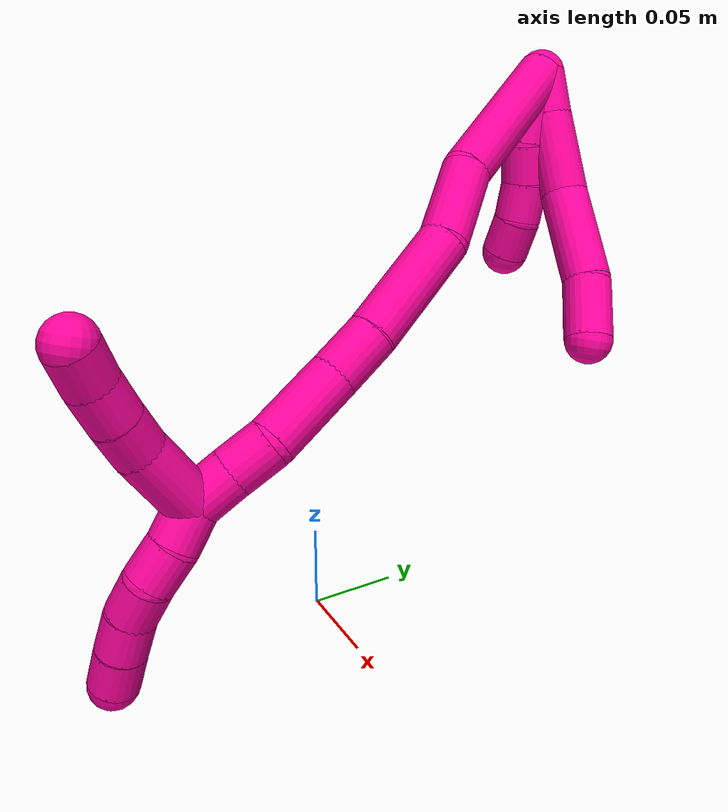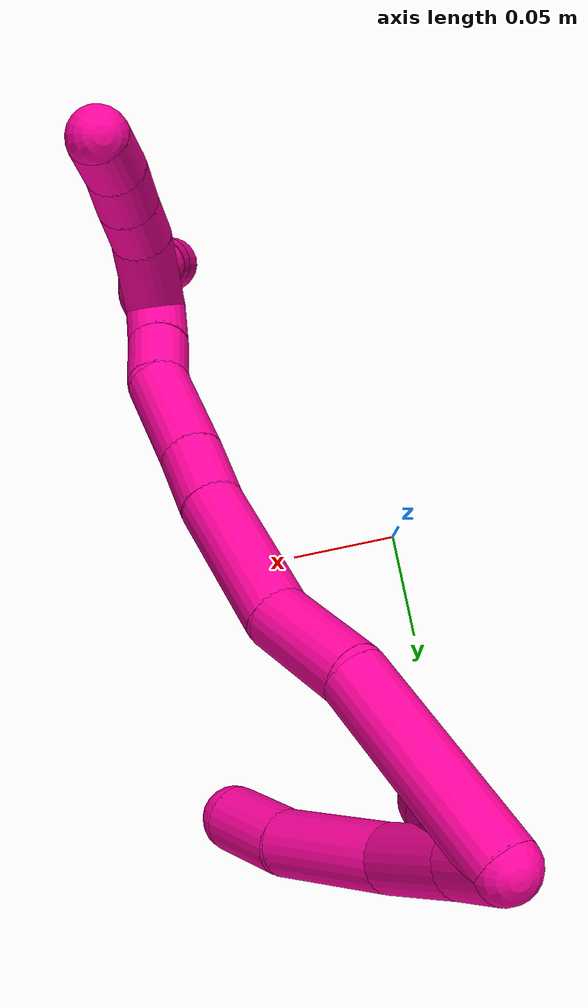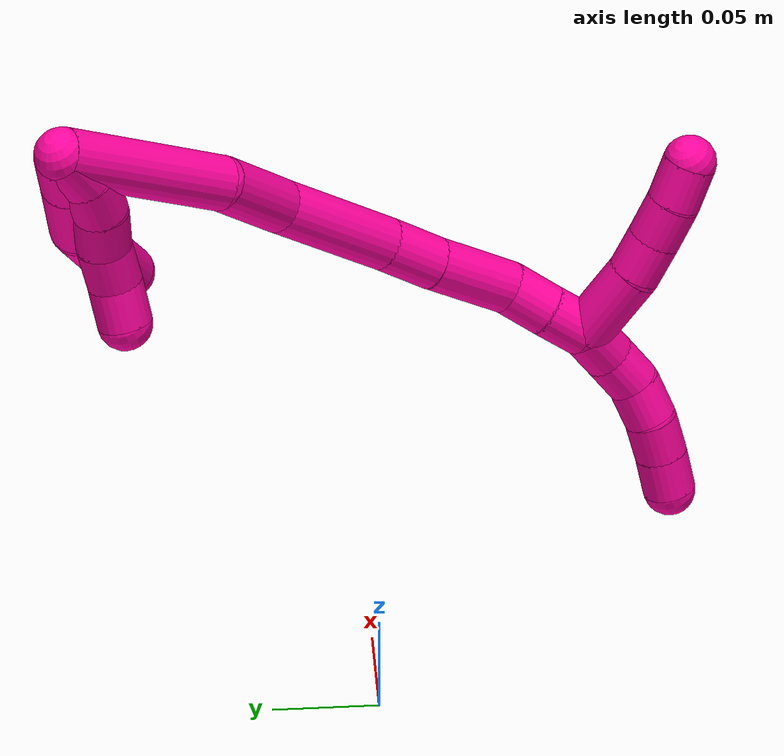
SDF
<sdf version="1.7">
 <world name="default">
  <model name="18">
   <static>0</static>
   <link name="18">
    <collision name="collision-cylinder-e_1_2_8">
     <pose>0.002205 0.003198 -0.011352 -2.867 0.184831 -1.18171</pose>
     <geometry><cylinder><radius>0.0125</radius><length>0.023997</length></cylinder></geometry>
     <surface>
      <friction><ode><mu>1.16</mu><mu2>1.16</mu2><slip1>0</slip1><slip2>0</slip2></ode></friction>
      <contact><ode><kp>1e+06</kp><kd>1</kd><max_vel>0</max_vel><min_depth>0.001</min_depth></ode></contact>
     </surface>
    </collision>
    <visual name="visual-cylinder-e_1_2_8">
     <pose>0.002205 0.003198 -0.011352 -2.867 0.184831 -1.18171</pose>
     <geometry><cylinder><radius>0.0125</radius><length>0.023997</length></cylinder></geometry>
     <material><ambient>1 0.007843 0.615686 1</ambient></material>
    </visual>
    <collision name="collision-cylinder-e_2_8_9">
     <pose>0.009076 0.012534 -0.042705 -2.84384 0.219418 -1.2669</pose>
     <geometry><cylinder><radius>0.0125</radius><length>0.04287</length></cylinder></geometry>
     <surface>
      <friction><ode><mu>1.16</mu><mu2>1.16</mu2><slip1>0</slip1><slip2>0</slip2></ode></friction>
      <contact><ode><kp>1e+06</kp><kd>1</kd><max_vel>0</max_vel><min_depth>0.001</min_depth></ode></contact>
     </surface>
    </collision>
    <visual name="visual-cylinder-e_2_8_9">
     <pose>0.009076 0.012534 -0.042705 -2.84384 0.219418 -1.2669</pose>
     <geometry><cylinder><radius>0.0125</radius><length>0.04287</length></cylinder></geometry>
     <material><ambient>1 0.007843 0.615686 1</ambient></material>
    </visual>
    <collision name="collision-cylinder-e_3_9_10">
     <pose>0.025984 0.022939 -0.084846 -2.9512 0.497408 -2.42232</pose>
     <geometry><cylinder><radius>0.0125</radius><length>0.051314</length></cylinder></geometry>
     <surface>
      <friction><ode><mu>1.16</mu><mu2>1.16</mu2><slip1>0</slip1><slip2>0</slip2></ode></friction>
      <contact><ode><kp>1e+06</kp><kd>1</kd><max_vel>0</max_vel><min_depth>0.001</min_depth></ode></contact>
     </surface>
    </collision>
    <visual name="visual-cylinder-e_3_9_10">
     <pose>0.025984 0.022939 -0.084846 -2.9512 0.497408 -2.42232</pose>
     <geometry><cylinder><radius>0.0125</radius><length>0.051314</length></cylinder></geometry>
     <material><ambient>1 0.007843 0.615686 1</ambient></material>
    </visual>
    <collision name="collision-cylinder-e_4_10_6">
     <pose>0.044081 0.027241 -0.121779 -3.13918 0.376917 -3.12895</pose>
     <geometry><cylinder><radius>0.0125</radius><length>0.031819</length></cylinder></geometry>
     <surface>
      <friction><ode><mu>1.16</mu><mu2>1.16</mu2><slip1>0</slip1><slip2>0</slip2></ode></friction>
      <contact><ode><kp>1e+06</kp><kd>1</kd><max_vel>0</max_vel><min_depth>0.001</min_depth></ode></contact>
     </surface>
    </collision>
    <visual name="visual-cylinder-e_4_10_6">
     <pose>0.044081 0.027241 -0.121779 -3.13918 0.376917 -3.12895</pose>
     <geometry><cylinder><radius>0.0125</radius><length>0.031819</length></cylinder></geometry>
     <material><ambient>1 0.007843 0.615686 1</ambient></material>
    </visual>
    <collision name="collision-cylinder-e_1_2_11">
     <pose>0.000991 -0.001955 -0.009757 2.94385 0.099259 0.928463</pose>
     <geometry><cylinder><radius>0.0125</radius><length>0.02</length></cylinder></geometry>
     <surface>
      <friction><ode><mu>1.16</mu><mu2>1.16</mu2><slip1>0</slip1><slip2>0</slip2></ode></friction>
      <contact><ode><kp>1e+06</kp><kd>1</kd><max_vel>0</max_vel><min_depth>0.001</min_depth></ode></contact>
     </surface>
    </collision>
    <visual name="visual-cylinder-e_1_2_11">
     <pose>0.000991 -0.001955 -0.009757 2.94385 0.099259 0.928463</pose>
     <geometry><cylinder><radius>0.0125</radius><length>0.02</length></cylinder></geometry>
     <material><ambient>1 0.007843 0.615686 1</ambient></material>
    </visual>
    <collision name="collision-cylinder-e_2_11_12">
     <pose>0.001563 -0.003474 -0.029495 -3.09798 -0.04195 1.53186</pose>
     <geometry><cylinder><radius>0.0125</radius><length>0.02</length></cylinder></geometry>
     <surface>
      <friction><ode><mu>1.16</mu><mu2>1.16</mu2><slip1>0</slip1><slip2>0</slip2></ode></friction>
      <contact><ode><kp>1e+06</kp><kd>1</kd><max_vel>0</max_vel><min_depth>0.001</min_depth></ode></contact>
     </surface>
    </collision>
    <visual name="visual-cylinder-e_2_11_12">
     <pose>0.001563 -0.003474 -0.029495 -3.09798 -0.04195 1.53186</pose>
     <geometry><cylinder><radius>0.0125</radius><length>0.02</length></cylinder></geometry>
     <material><ambient>1 0.007843 0.615686 1</ambient></material>
    </visual>
    <collision name="collision-cylinder-e_3_12_13">
     <pose>-0.000298 -0.000532 -0.04905 -2.88551 -0.144611 1.02493</pose>
     <geometry><cylinder><radius>0.0125</radius><length>0.02</length></cylinder></geometry>
     <surface>
      <friction><ode><mu>1.16</mu><mu2>1.16</mu2><slip1>0</slip1><slip2>0</slip2></ode></friction>
      <contact><ode><kp>1e+06</kp><kd>1</kd><max_vel>0</max_vel><min_depth>0.001</min_depth></ode></contact>
     </surface>
    </collision>
    <visual name="visual-cylinder-e_3_12_13">
     <pose>-0.000298 -0.000532 -0.04905 -2.88551 -0.144611 1.02493</pose>
     <geometry><cylinder><radius>0.0125</radius><length>0.02</length></cylinder></geometry>
     <material><ambient>1 0.007843 0.615686 1</ambient></material>
    </visual>
    <collision name="collision-cylinder-e_4_13_14">
     <pose>-0.003966 0.002548 -0.068355 -3.08274 -0.2246 2.63094</pose>
     <geometry><cylinder><radius>0.0125</radius><length>0.02</length></cylinder></geometry>
     <surface>
      <friction><ode><mu>1.16</mu><mu2>1.16</mu2><slip1>0</slip1><slip2>0</slip2></ode></friction>
      <contact><ode><kp>1e+06</kp><kd>1</kd><max_vel>0</max_vel><min_depth>0.001</min_depth></ode></contact>
     </surface>
    </collision>
    <visual name="visual-cylinder-e_4_13_14">
     <pose>-0.003966 0.002548 -0.068355 -3.08274 -0.2246 2.63094</pose>
     <geometry><cylinder><radius>0.0125</radius><length>0.02</length></cylinder></geometry>
     <material><ambient>1 0.007843 0.615686 1</ambient></material>
    </visual>
    <collision name="collision-cylinder-e_5_14_5">
     <pose>-0.01069 0.003141 -0.087019 -3.13944 -0.466363 3.13252</pose>
     <geometry><cylinder><radius>0.0125</radius><length>0.02</length></cylinder></geometry>
     <surface>
      <friction><ode><mu>1.16</mu><mu2>1.16</mu2><slip1>0</slip1><slip2>0</slip2></ode></friction>
      <contact><ode><kp>1e+06</kp><kd>1</kd><max_vel>0</max_vel><min_depth>0.001</min_depth></ode></contact>
     </surface>
    </collision>
    <visual name="visual-cylinder-e_5_14_5">
     <pose>-0.01069 0.003141 -0.087019 -3.13944 -0.466363 3.13252</pose>
     <geometry><cylinder><radius>0.0125</radius><length>0.02</length></cylinder></geometry>
     <material><ambient>1 0.007843 0.615686 1</ambient></material>
    </visual>
    <collision name="collision-cylinder-e_1_2_15">
     <pose>0.015909 -0.023091 -0.031632 2.51102 0.385868 1.07933</pose>
     <geometry><cylinder><radius>0.0125</radius><length>0.084543</length></cylinder></geometry>
     <surface>
      <friction><ode><mu>1.16</mu><mu2>1.16</mu2><slip1>0</slip1><slip2>0</slip2></ode></friction>
      <contact><ode><kp>1e+06</kp><kd>1</kd><max_vel>0</max_vel><min_depth>0.001</min_depth></ode></contact>
     </surface>
    </collision>
    <visual name="visual-cylinder-e_1_2_15">
     <pose>0.015909 -0.023091 -0.031632 2.51102 0.385868 1.07933</pose>
     <geometry><cylinder><radius>0.0125</radius><length>0.084543</length></cylinder></geometry>
     <material><ambient>1 0.007843 0.615686 1</ambient></material>
    </visual>
    <collision name="collision-cylinder-e_2_15_16">
     <pose>0.040174 -0.052389 -0.081997 2.82164 0.400473 1.79819</pose>
     <geometry><cylinder><radius>0.0125</radius><length>0.04286</length></cylinder></geometry>
     <surface>
      <friction><ode><mu>1.16</mu><mu2>1.16</mu2><slip1>0</slip1><slip2>0</slip2></ode></friction>
      <contact><ode><kp>1e+06</kp><kd>1</kd><max_vel>0</max_vel><min_depth>0.001</min_depth></ode></contact>
     </surface>
    </collision>
    <visual name="visual-cylinder-e_2_15_16">
     <pose>0.040174 -0.052389 -0.081997 2.82164 0.400473 1.79819</pose>
     <geometry><cylinder><radius>0.0125</radius><length>0.04286</length></cylinder></geometry>
     <material><ambient>1 0.007843 0.615686 1</ambient></material>
    </visual>
    <collision name="collision-cylinder-e_3_16_17">
     <pose>0.05556 -0.075061 -0.125159 2.54854 0.234306 0.73537</pose>
     <geometry><cylinder><radius>0.0125</radius><length>0.060576</length></cylinder></geometry>
     <surface>
      <friction><ode><mu>1.16</mu><mu2>1.16</mu2><slip1>0</slip1><slip2>0</slip2></ode></friction>
      <contact><ode><kp>1e+06</kp><kd>1</kd><max_vel>0</max_vel><min_depth>0.001</min_depth></ode></contact>
     </surface>
    </collision>
    <visual name="visual-cylinder-e_3_16_17">
     <pose>0.05556 -0.075061 -0.125159 2.54854 0.234306 0.73537</pose>
     <geometry><cylinder><radius>0.0125</radius><length>0.060576</length></cylinder></geometry>
     <material><ambient>1 0.007843 0.615686 1</ambient></material>
    </visual>
    <collision name="collision-cylinder-e_4_17_18">
     <pose>0.064539 -0.099726 -0.16022 2.48458 0.144029 0.417126</pose>
     <geometry><cylinder><radius>0.0125</radius><length>0.027132</length></cylinder></geometry>
     <surface>
      <friction><ode><mu>1.16</mu><mu2>1.16</mu2><slip1>0</slip1><slip2>0</slip2></ode></friction>
      <contact><ode><kp>1e+06</kp><kd>1</kd><max_vel>0</max_vel><min_depth>0.001</min_depth></ode></contact>
     </surface>
    </collision>
    <visual name="visual-cylinder-e_4_17_18">
     <pose>0.064539 -0.099726 -0.16022 2.48458 0.144029 0.417126</pose>
     <geometry><cylinder><radius>0.0125</radius><length>0.027132</length></cylinder></geometry>
     <material><ambient>1 0.007843 0.615686 1</ambient></material>
    </visual>
    <collision name="collision-cylinder-e_5_18_19">
     <pose>0.070502 -0.120803 -0.186629 2.45707 0.194671 0.534994</pose>
     <geometry><cylinder><radius>0.0125</radius><length>0.041519</length></cylinder></geometry>
     <surface>
      <friction><ode><mu>1.16</mu><mu2>1.16</mu2><slip1>0</slip1><slip2>0</slip2></ode></friction>
      <contact><ode><kp>1e+06</kp><kd>1</kd><max_vel>0</max_vel><min_depth>0.001</min_depth></ode></contact>
     </surface>
    </collision>
    <visual name="visual-cylinder-e_5_18_19">
     <pose>0.070502 -0.120803 -0.186629 2.45707 0.194671 0.534994</pose>
     <geometry><cylinder><radius>0.0125</radius><length>0.041519</length></cylinder></geometry>
     <material><ambient>1 0.007843 0.615686 1</ambient></material>
    </visual>
    <collision name="collision-cylinder-e_6_19_20">
     <pose>0.073212 -0.141081 -0.210325 2.38996 -0.119883 -0.301882</pose>
     <geometry><cylinder><radius>0.0125</radius><length>0.02183</length></cylinder></geometry>
     <surface>
      <friction><ode><mu>1.16</mu><mu2>1.16</mu2><slip1>0</slip1><slip2>0</slip2></ode></friction>
      <contact><ode><kp>1e+06</kp><kd>1</kd><max_vel>0</max_vel><min_depth>0.001</min_depth></ode></contact>
     </surface>
    </collision>
    <visual name="visual-cylinder-e_6_19_20">
     <pose>0.073212 -0.141081 -0.210325 2.38996 -0.119883 -0.301882</pose>
     <geometry><cylinder><radius>0.0125</radius><length>0.02183</length></cylinder></geometry>
     <material><ambient>1 0.007843 0.615686 1</ambient></material>
    </visual>
    <collision name="collision-cylinder-e_7_20_1">
     <pose>0.071139 -0.155685 -0.226211 2.40657 -0.071361 -0.184901</pose>
     <geometry><cylinder><radius>0.0125</radius><length>0.021541</length></cylinder></geometry>
     <surface>
      <friction><ode><mu>1.16</mu><mu2>1.16</mu2><slip1>0</slip1><slip2>0</slip2></ode></friction>
      <contact><ode><kp>1e+06</kp><kd>1</kd><max_vel>0</max_vel><min_depth>0.001</min_depth></ode></contact>
     </surface>
    </collision>
    <visual name="visual-cylinder-e_7_20_1">
     <pose>0.071139 -0.155685 -0.226211 2.40657 -0.071361 -0.184901</pose>
     <geometry><cylinder><radius>0.0125</radius><length>0.021541</length></cylinder></geometry>
     <material><ambient>1 0.007843 0.615686 1</ambient></material>
    </visual>
    <collision name="collision-cylinder-e_1_1_21">
     <pose>0.076572 -0.17698 -0.222438 0.876066 0.326024 0.153767</pose>
     <geometry><cylinder><radius>0.0125</radius><length>0.038724</length></cylinder></geometry>
     <surface>
      <friction><ode><mu>1.16</mu><mu2>1.16</mu2><slip1>0</slip1><slip2>0</slip2></ode></friction>
      <contact><ode><kp>1e+06</kp><kd>1</kd><max_vel>0</max_vel><min_depth>0.001</min_depth></ode></contact>
     </surface>
    </collision>
    <visual name="visual-cylinder-e_1_1_21">
     <pose>0.076572 -0.17698 -0.222438 0.876066 0.326024 0.153767</pose>
     <geometry><cylinder><radius>0.0125</radius><length>0.038724</length></cylinder></geometry>
     <material><ambient>1 0.007843 0.615686 1</ambient></material>
    </visual>
    <collision name="collision-cylinder-e_2_21_22">
     <pose>0.087142 -0.197162 -0.204077 0.743876 0.452089 0.178945</pose>
     <geometry><cylinder><radius>0.0125</radius><length>0.020001</length></cylinder></geometry>
     <surface>
      <friction><ode><mu>1.16</mu><mu2>1.16</mu2><slip1>0</slip1><slip2>0</slip2></ode></friction>
      <contact><ode><kp>1e+06</kp><kd>1</kd><max_vel>0</max_vel><min_depth>0.001</min_depth></ode></contact>
     </surface>
    </collision>
    <visual name="visual-cylinder-e_2_21_22">
     <pose>0.087142 -0.197162 -0.204077 0.743876 0.452089 0.178945</pose>
     <geometry><cylinder><radius>0.0125</radius><length>0.020001</length></cylinder></geometry>
     <material><ambient>1 0.007843 0.615686 1</ambient></material>
    </visual>
    <collision name="collision-cylinder-e_3_22_23">
     <pose>0.095589 -0.20932 -0.190309 0.703722 0.410319 0.152498</pose>
     <geometry><cylinder><radius>0.0125</radius><length>0.020448</length></cylinder></geometry>
     <surface>
      <friction><ode><mu>1.16</mu><mu2>1.16</mu2><slip1>0</slip1><slip2>0</slip2></ode></friction>
      <contact><ode><kp>1e+06</kp><kd>1</kd><max_vel>0</max_vel><min_depth>0.001</min_depth></ode></contact>
     </surface>
    </collision>
    <visual name="visual-cylinder-e_3_22_23">
     <pose>0.095589 -0.20932 -0.190309 0.703722 0.410319 0.152498</pose>
     <geometry><cylinder><radius>0.0125</radius><length>0.020448</length></cylinder></geometry>
     <material><ambient>1 0.007843 0.615686 1</ambient></material>
    </visual>
    <collision name="collision-cylinder-e_4_23_4">
     <pose>0.104632 -0.220641 -0.175665 0.611428 0.496968 0.159816</pose>
     <geometry><cylinder><radius>0.0125</radius><length>0.020827</length></cylinder></geometry>
     <surface>
      <friction><ode><mu>1.16</mu><mu2>1.16</mu2><slip1>0</slip1><slip2>0</slip2></ode></friction>
      <contact><ode><kp>1e+06</kp><kd>1</kd><max_vel>0</max_vel><min_depth>0.001</min_depth></ode></contact>
     </surface>
    </collision>
    <visual name="visual-cylinder-e_4_23_4">
     <pose>0.104632 -0.220641 -0.175665 0.611428 0.496968 0.159816</pose>
     <geometry><cylinder><radius>0.0125</radius><length>0.020827</length></cylinder></geometry>
     <material><ambient>1 0.007843 0.615686 1</ambient></material>
    </visual>
    <collision name="collision-cylinder-e_1_1_24">
     <pose>0.070346 -0.165901 -0.243716 2.83569 -0.002525 -0.016376</pose>
     <geometry><cylinder><radius>0.0125</radius><length>0.02</length></cylinder></geometry>
     <surface>
      <friction><ode><mu>1.16</mu><mu2>1.16</mu2><slip1>0</slip1><slip2>0</slip2></ode></friction>
      <contact><ode><kp>1e+06</kp><kd>1</kd><max_vel>0</max_vel><min_depth>0.001</min_depth></ode></contact>
     </surface>
    </collision>
    <visual name="visual-cylinder-e_1_1_24">
     <pose>0.070346 -0.165901 -0.243716 2.83569 -0.002525 -0.016376</pose>
     <geometry><cylinder><radius>0.0125</radius><length>0.02</length></cylinder></geometry>
     <material><ambient>1 0.007843 0.615686 1</ambient></material>
    </visual>
    <collision name="collision-cylinder-e_2_24_25">
     <pose>0.068749 -0.172854 -0.262307 2.73105 -0.157781 -0.72576</pose>
     <geometry><cylinder><radius>0.0125</radius><length>0.02</length></cylinder></geometry>
     <surface>
      <friction><ode><mu>1.16</mu><mu2>1.16</mu2><slip1>0</slip1><slip2>0</slip2></ode></friction>
      <contact><ode><kp>1e+06</kp><kd>1</kd><max_vel>0</max_vel><min_depth>0.001</min_depth></ode></contact>
     </surface>
    </collision>
    <visual name="visual-cylinder-e_2_24_25">
     <pose>0.068749 -0.172854 -0.262307 2.73105 -0.157781 -0.72576</pose>
     <geometry><cylinder><radius>0.0125</radius><length>0.02</length></cylinder></geometry>
     <material><ambient>1 0.007843 0.615686 1</ambient></material>
    </visual>
    <collision name="collision-cylinder-e_3_25_26">
     <pose>0.063152 -0.17902 -0.280241 2.89614 -0.414391 -2.08033</pose>
     <geometry><cylinder><radius>0.0125</radius><length>0.02</length></cylinder></geometry>
     <surface>
      <friction><ode><mu>1.16</mu><mu2>1.16</mu2><slip1>0</slip1><slip2>0</slip2></ode></friction>
      <contact><ode><kp>1e+06</kp><kd>1</kd><max_vel>0</max_vel><min_depth>0.001</min_depth></ode></contact>
     </surface>
    </collision>
    <visual name="visual-cylinder-e_3_25_26">
     <pose>0.063152 -0.17902 -0.280241 2.89614 -0.414391 -2.08033</pose>
     <geometry><cylinder><radius>0.0125</radius><length>0.02</length></cylinder></geometry>
     <material><ambient>1 0.007843 0.615686 1</ambient></material>
    </visual>
    <collision name="collision-cylinder-e_4_26_27">
     <pose>0.055739 -0.18174 -0.298517 3.08884 -0.345483 -2.84143</pose>
     <geometry><cylinder><radius>0.0125</radius><length>0.02</length></cylinder></geometry>
     <surface>
      <friction><ode><mu>1.16</mu><mu2>1.16</mu2><slip1>0</slip1><slip2>0</slip2></ode></friction>
      <contact><ode><kp>1e+06</kp><kd>1</kd><max_vel>0</max_vel><min_depth>0.001</min_depth></ode></contact>
     </surface>
    </collision>
    <visual name="visual-cylinder-e_4_26_27">
     <pose>0.055739 -0.18174 -0.298517 3.08884 -0.345483 -2.84143</pose>
     <geometry><cylinder><radius>0.0125</radius><length>0.02</length></cylinder></geometry>
     <material><ambient>1 0.007843 0.615686 1</ambient></material>
    </visual>
    <collision name="collision-cylinder-e_5_27_3">
     <pose>0.048525 -0.182303 -0.317151 3.13435 -0.392798 -3.10517</pose>
     <geometry><cylinder><radius>0.0125</radius><length>0.02</length></cylinder></geometry>
     <surface>
      <friction><ode><mu>1.16</mu><mu2>1.16</mu2><slip1>0</slip1><slip2>0</slip2></ode></friction>
      <contact><ode><kp>1e+06</kp><kd>1</kd><max_vel>0</max_vel><min_depth>0.001</min_depth></ode></contact>
     </surface>
    </collision>
    <visual name="visual-cylinder-e_5_27_3">
     <pose>0.048525 -0.182303 -0.317151 3.13435 -0.392798 -3.10517</pose>
     <geometry><cylinder><radius>0.0125</radius><length>0.02</length></cylinder></geometry>
     <material><ambient>1 0.007843 0.615686 1</ambient></material>
    </visual>
    <collision name="collision-sphere-3">
     <pose>0.044697 -0.18237 -0.326389 0 -0 0</pose>
     <geometry><sphere><radius>0.0125</radius></sphere></geometry>
     <surface>
      <friction><ode><mu>1.16</mu><mu2>1.16</mu2><slip1>0</slip1><slip2>0</slip2></ode></friction>
      <contact><ode><kp>1e+06</kp><kd>1</kd><max_vel>0</max_vel><min_depth>0.001</min_depth></ode></contact>
     </surface>
    </collision>
    <visual name="visual-sphere-3">
     <pose>0.044697 -0.18237 -0.326389 0 -0 0</pose>
     <geometry><sphere><radius>0.0125</radius></sphere></geometry>
     <material><ambient>1 0.007843 0.615686 1</ambient></material>
    </visual>
    <collision name="collision-sphere-27">
     <pose>0.052352 -0.182236 -0.307913 0 -0 0</pose>
     <geometry><sphere><radius>0.0125</radius></sphere></geometry>
     <surface>
      <friction><ode><mu>1.16</mu><mu2>1.16</mu2><slip1>0</slip1><slip2>0</slip2></ode></friction>
      <contact><ode><kp>1e+06</kp><kd>1</kd><max_vel>0</max_vel><min_depth>0.001</min_depth></ode></contact>
     </surface>
    </collision>
    <visual name="visual-sphere-27">
     <pose>0.052352 -0.182236 -0.307913 0 -0 0</pose>
     <geometry><sphere><radius>0.0125</radius></sphere></geometry>
     <material><ambient>1 0.007843 0.615686 1</ambient></material>
    </visual>
    <collision name="collision-sphere-26">
     <pose>0.059125 -0.181244 -0.289121 0 -0 0</pose>
     <geometry><sphere><radius>0.0125</radius></sphere></geometry>
     <surface>
      <friction><ode><mu>1.16</mu><mu2>1.16</mu2><slip1>0</slip1><slip2>0</slip2></ode></friction>
      <contact><ode><kp>1e+06</kp><kd>1</kd><max_vel>0</max_vel><min_depth>0.001</min_depth></ode></contact>
     </surface>
    </collision>
    <visual name="visual-sphere-26">
     <pose>0.059125 -0.181244 -0.289121 0 -0 0</pose>
     <geometry><sphere><radius>0.0125</radius></sphere></geometry>
     <material><ambient>1 0.007843 0.615686 1</ambient></material>
    </visual>
    <collision name="collision-sphere-25">
     <pose>0.067178 -0.176795 -0.271362 0 -0 0</pose>
     <geometry><sphere><radius>0.0125</radius></sphere></geometry>
     <surface>
      <friction><ode><mu>1.16</mu><mu2>1.16</mu2><slip1>0</slip1><slip2>0</slip2></ode></friction>
      <contact><ode><kp>1e+06</kp><kd>1</kd><max_vel>0</max_vel><min_depth>0.001</min_depth></ode></contact>
     </surface>
    </collision>
    <visual name="visual-sphere-25">
     <pose>0.067178 -0.176795 -0.271362 0 -0 0</pose>
     <geometry><sphere><radius>0.0125</radius></sphere></geometry>
     <material><ambient>1 0.007843 0.615686 1</ambient></material>
    </visual>
    <collision name="collision-sphere-24">
     <pose>0.070321 -0.168912 -0.253252 0 -0 0</pose>
     <geometry><sphere><radius>0.0125</radius></sphere></geometry>
     <surface>
      <friction><ode><mu>1.16</mu><mu2>1.16</mu2><slip1>0</slip1><slip2>0</slip2></ode></friction>
      <contact><ode><kp>1e+06</kp><kd>1</kd><max_vel>0</max_vel><min_depth>0.001</min_depth></ode></contact>
     </surface>
    </collision>
    <visual name="visual-sphere-24">
     <pose>0.070321 -0.168912 -0.253252 0 -0 0</pose>
     <geometry><sphere><radius>0.0125</radius></sphere></geometry>
     <material><ambient>1 0.007843 0.615686 1</ambient></material>
    </visual>
    <collision name="collision-sphere-4">
     <pose>0.109597 -0.225896 -0.16817 0 -0 0</pose>
     <geometry><sphere><radius>0.0125</radius></sphere></geometry>
     <surface>
      <friction><ode><mu>1.16</mu><mu2>1.16</mu2><slip1>0</slip1><slip2>0</slip2></ode></friction>
      <contact><ode><kp>1e+06</kp><kd>1</kd><max_vel>0</max_vel><min_depth>0.001</min_depth></ode></contact>
     </surface>
    </collision>
    <visual name="visual-sphere-4">
     <pose>0.109597 -0.225896 -0.16817 0 -0 0</pose>
     <geometry><sphere><radius>0.0125</radius></sphere></geometry>
     <material><ambient>1 0.007843 0.615686 1</ambient></material>
    </visual>
    <collision name="collision-sphere-23">
     <pose>0.099667 -0.215387 -0.183161 0 -0 0</pose>
     <geometry><sphere><radius>0.0125</radius></sphere></geometry>
     <surface>
      <friction><ode><mu>1.16</mu><mu2>1.16</mu2><slip1>0</slip1><slip2>0</slip2></ode></friction>
      <contact><ode><kp>1e+06</kp><kd>1</kd><max_vel>0</max_vel><min_depth>0.001</min_depth></ode></contact>
     </surface>
    </collision>
    <visual name="visual-sphere-23">
     <pose>0.099667 -0.215387 -0.183161 0 -0 0</pose>
     <geometry><sphere><radius>0.0125</radius></sphere></geometry>
     <material><ambient>1 0.007843 0.615686 1</ambient></material>
    </visual>
    <collision name="collision-sphere-22">
     <pose>0.091511 -0.203254 -0.197457 0 -0 0</pose>
     <geometry><sphere><radius>0.0125</radius></sphere></geometry>
     <surface>
      <friction><ode><mu>1.16</mu><mu2>1.16</mu2><slip1>0</slip1><slip2>0</slip2></ode></friction>
      <contact><ode><kp>1e+06</kp><kd>1</kd><max_vel>0</max_vel><min_depth>0.001</min_depth></ode></contact>
     </surface>
    </collision>
    <visual name="visual-sphere-22">
     <pose>0.091511 -0.203254 -0.197457 0 -0 0</pose>
     <geometry><sphere><radius>0.0125</radius></sphere></geometry>
     <material><ambient>1 0.007843 0.615686 1</ambient></material>
    </visual>
    <collision name="collision-sphere-21">
     <pose>0.082773 -0.191071 -0.210696 0 -0 0</pose>
     <geometry><sphere><radius>0.0125</radius></sphere></geometry>
     <surface>
      <friction><ode><mu>1.16</mu><mu2>1.16</mu2><slip1>0</slip1><slip2>0</slip2></ode></friction>
      <contact><ode><kp>1e+06</kp><kd>1</kd><max_vel>0</max_vel><min_depth>0.001</min_depth></ode></contact>
     </surface>
    </collision>
    <visual name="visual-sphere-21">
     <pose>0.082773 -0.191071 -0.210696 0 -0 0</pose>
     <geometry><sphere><radius>0.0125</radius></sphere></geometry>
     <material><ambient>1 0.007843 0.615686 1</ambient></material>
    </visual>
    <collision name="collision-sphere-1">
     <pose>0.070371 -0.162889 -0.23418 0 -0 0</pose>
     <geometry><sphere><radius>0.0125</radius></sphere></geometry>
     <surface>
      <friction><ode><mu>1.16</mu><mu2>1.16</mu2><slip1>0</slip1><slip2>0</slip2></ode></friction>
      <contact><ode><kp>1e+06</kp><kd>1</kd><max_vel>0</max_vel><min_depth>0.001</min_depth></ode></contact>
     </surface>
    </collision>
    <visual name="visual-sphere-1">
     <pose>0.070371 -0.162889 -0.23418 0 -0 0</pose>
     <geometry><sphere><radius>0.0125</radius></sphere></geometry>
     <material><ambient>1 0.007843 0.615686 1</ambient></material>
    </visual>
    <collision name="collision-sphere-11">
     <pose>0.001982 -0.00391 -0.019514 0 -0 0</pose>
     <geometry><sphere><radius>0.0125</radius></sphere></geometry>
     <surface>
      <friction><ode><mu>1.16</mu><mu2>1.16</mu2><slip1>0</slip1><slip2>0</slip2></ode></friction>
      <contact><ode><kp>1e+06</kp><kd>1</kd><max_vel>0</max_vel><min_depth>0.001</min_depth></ode></contact>
     </surface>
    </collision>
    <visual name="visual-sphere-11">
     <pose>0.001982 -0.00391 -0.019514 0 -0 0</pose>
     <geometry><sphere><radius>0.0125</radius></sphere></geometry>
     <material><ambient>1 0.007843 0.615686 1</ambient></material>
    </visual>
    <collision name="collision-sphere-6">
     <pose>0.049937 0.027277 -0.136572 0 -0 0</pose>
     <geometry><sphere><radius>0.0125</radius></sphere></geometry>
     <surface>
      <friction><ode><mu>1.16</mu><mu2>1.16</mu2><slip1>0</slip1><slip2>0</slip2></ode></friction>
      <contact><ode><kp>1e+06</kp><kd>1</kd><max_vel>0</max_vel><min_depth>0.001</min_depth></ode></contact>
     </surface>
    </collision>
    <visual name="visual-sphere-6">
     <pose>0.049937 0.027277 -0.136572 0 -0 0</pose>
     <geometry><sphere><radius>0.0125</radius></sphere></geometry>
     <material><ambient>1 0.007843 0.615686 1</ambient></material>
    </visual>
    <collision name="collision-sphere-10">
     <pose>0.038226 0.027206 -0.106987 0 -0 0</pose>
     <geometry><sphere><radius>0.0125</radius></sphere></geometry>
     <surface>
      <friction><ode><mu>1.16</mu><mu2>1.16</mu2><slip1>0</slip1><slip2>0</slip2></ode></friction>
      <contact><ode><kp>1e+06</kp><kd>1</kd><max_vel>0</max_vel><min_depth>0.001</min_depth></ode></contact>
     </surface>
    </collision>
    <visual name="visual-sphere-10">
     <pose>0.038226 0.027206 -0.106987 0 -0 0</pose>
     <geometry><sphere><radius>0.0125</radius></sphere></geometry>
     <material><ambient>1 0.007843 0.615686 1</ambient></material>
    </visual>
    <collision name="collision-sphere-9">
     <pose>0.013741 0.018671 -0.062706 0 -0 0</pose>
     <geometry><sphere><radius>0.0125</radius></sphere></geometry>
     <surface>
      <friction><ode><mu>1.16</mu><mu2>1.16</mu2><slip1>0</slip1><slip2>0</slip2></ode></friction>
      <contact><ode><kp>1e+06</kp><kd>1</kd><max_vel>0</max_vel><min_depth>0.001</min_depth></ode></contact>
     </surface>
    </collision>
    <visual name="visual-sphere-9">
     <pose>0.013741 0.018671 -0.062706 0 -0 0</pose>
     <geometry><sphere><radius>0.0125</radius></sphere></geometry>
     <material><ambient>1 0.007843 0.615686 1</ambient></material>
    </visual>
    <collision name="collision-sphere-2">
     <geometry><sphere><radius>0.0125</radius></sphere></geometry>
     <surface>
      <friction><ode><mu>1.16</mu><mu2>1.16</mu2><slip1>0</slip1><slip2>0</slip2></ode></friction>
      <contact><ode><kp>1e+06</kp><kd>1</kd><max_vel>0</max_vel><min_depth>0.001</min_depth></ode></contact>
     </surface>
    </collision>
    <visual name="visual-sphere-2">
     <geometry><sphere><radius>0.0125</radius></sphere></geometry>
     <material><ambient>1 0.007843 0.615686 1</ambient></material>
    </visual>
    <collision name="collision-sphere-19">
     <pose>0.074518 -0.133682 -0.202408 0 -0 0</pose>
     <geometry><sphere><radius>0.0125</radius></sphere></geometry>
     <surface>
      <friction><ode><mu>1.16</mu><mu2>1.16</mu2><slip1>0</slip1><slip2>0</slip2></ode></friction>
      <contact><ode><kp>1e+06</kp><kd>1</kd><max_vel>0</max_vel><min_depth>0.001</min_depth></ode></contact>
     </surface>
    </collision>
    <visual name="visual-sphere-19">
     <pose>0.074518 -0.133682 -0.202408 0 -0 0</pose>
     <geometry><sphere><radius>0.0125</radius></sphere></geometry>
     <material><ambient>1 0.007843 0.615686 1</ambient></material>
    </visual>
    <collision name="collision-sphere-8">
     <pose>0.00441 0.006396 -0.022704 0 -0 0</pose>
     <geometry><sphere><radius>0.0125</radius></sphere></geometry>
     <surface>
      <friction><ode><mu>1.16</mu><mu2>1.16</mu2><slip1>0</slip1><slip2>0</slip2></ode></friction>
      <contact><ode><kp>1e+06</kp><kd>1</kd><max_vel>0</max_vel><min_depth>0.001</min_depth></ode></contact>
     </surface>
    </collision>
    <visual name="visual-sphere-8">
     <pose>0.00441 0.006396 -0.022704 0 -0 0</pose>
     <geometry><sphere><radius>0.0125</radius></sphere></geometry>
     <material><ambient>1 0.007843 0.615686 1</ambient></material>
    </visual>
    <collision name="collision-sphere-12">
     <pose>0.001143 -0.003039 -0.039477 0 -0 0</pose>
     <geometry><sphere><radius>0.0125</radius></sphere></geometry>
     <surface>
      <friction><ode><mu>1.16</mu><mu2>1.16</mu2><slip1>0</slip1><slip2>0</slip2></ode></friction>
      <contact><ode><kp>1e+06</kp><kd>1</kd><max_vel>0</max_vel><min_depth>0.001</min_depth></ode></contact>
     </surface>
    </collision>
    <visual name="visual-sphere-12">
     <pose>0.001143 -0.003039 -0.039477 0 -0 0</pose>
     <geometry><sphere><radius>0.0125</radius></sphere></geometry>
     <material><ambient>1 0.007843 0.615686 1</ambient></material>
    </visual>
    <collision name="collision-sphere-13">
     <pose>-0.001739 0.001974 -0.058623 0 -0 0</pose>
     <geometry><sphere><radius>0.0125</radius></sphere></geometry>
     <surface>
      <friction><ode><mu>1.16</mu><mu2>1.16</mu2><slip1>0</slip1><slip2>0</slip2></ode></friction>
      <contact><ode><kp>1e+06</kp><kd>1</kd><max_vel>0</max_vel><min_depth>0.001</min_depth></ode></contact>
     </surface>
    </collision>
    <visual name="visual-sphere-13">
     <pose>-0.001739 0.001974 -0.058623 0 -0 0</pose>
     <geometry><sphere><radius>0.0125</radius></sphere></geometry>
     <material><ambient>1 0.007843 0.615686 1</ambient></material>
    </visual>
    <collision name="collision-sphere-14">
     <pose>-0.006193 0.003121 -0.078087 0 -0 0</pose>
     <geometry><sphere><radius>0.0125</radius></sphere></geometry>
     <surface>
      <friction><ode><mu>1.16</mu><mu2>1.16</mu2><slip1>0</slip1><slip2>0</slip2></ode></friction>
      <contact><ode><kp>1e+06</kp><kd>1</kd><max_vel>0</max_vel><min_depth>0.001</min_depth></ode></contact>
     </surface>
    </collision>
    <visual name="visual-sphere-14">
     <pose>-0.006193 0.003121 -0.078087 0 -0 0</pose>
     <geometry><sphere><radius>0.0125</radius></sphere></geometry>
     <material><ambient>1 0.007843 0.615686 1</ambient></material>
    </visual>
    <collision name="collision-sphere-5">
     <pose>-0.015186 0.00316 -0.095951 0 -0 0</pose>
     <geometry><sphere><radius>0.0125</radius></sphere></geometry>
     <surface>
      <friction><ode><mu>1.16</mu><mu2>1.16</mu2><slip1>0</slip1><slip2>0</slip2></ode></friction>
      <contact><ode><kp>1e+06</kp><kd>1</kd><max_vel>0</max_vel><min_depth>0.001</min_depth></ode></contact>
     </surface>
    </collision>
    <visual name="visual-sphere-5">
     <pose>-0.015186 0.00316 -0.095951 0 -0 0</pose>
     <geometry><sphere><radius>0.0125</radius></sphere></geometry>
     <material><ambient>1 0.007843 0.615686 1</ambient></material>
    </visual>
    <collision name="collision-sphere-15">
     <pose>0.031819 -0.046182 -0.063264 0 -0 0</pose>
     <geometry><sphere><radius>0.0125</radius></sphere></geometry>
     <surface>
      <friction><ode><mu>1.16</mu><mu2>1.16</mu2><slip1>0</slip1><slip2>0</slip2></ode></friction>
      <contact><ode><kp>1e+06</kp><kd>1</kd><max_vel>0</max_vel><min_depth>0.001</min_depth></ode></contact>
     </surface>
    </collision>
    <visual name="visual-sphere-15">
     <pose>0.031819 -0.046182 -0.063264 0 -0 0</pose>
     <geometry><sphere><radius>0.0125</radius></sphere></geometry>
     <material><ambient>1 0.007843 0.615686 1</ambient></material>
    </visual>
    <collision name="collision-sphere-16">
     <pose>0.048528 -0.058596 -0.10073 0 -0 0</pose>
     <geometry><sphere><radius>0.0125</radius></sphere></geometry>
     <surface>
      <friction><ode><mu>1.16</mu><mu2>1.16</mu2><slip1>0</slip1><slip2>0</slip2></ode></friction>
      <contact><ode><kp>1e+06</kp><kd>1</kd><max_vel>0</max_vel><min_depth>0.001</min_depth></ode></contact>
     </surface>
    </collision>
    <visual name="visual-sphere-16">
     <pose>0.048528 -0.058596 -0.10073 0 -0 0</pose>
     <geometry><sphere><radius>0.0125</radius></sphere></geometry>
     <material><ambient>1 0.007843 0.615686 1</ambient></material>
    </visual>
    <collision name="collision-sphere-17">
     <pose>0.062592 -0.091526 -0.149589 0 -0 0</pose>
     <geometry><sphere><radius>0.0125</radius></sphere></geometry>
     <surface>
      <friction><ode><mu>1.16</mu><mu2>1.16</mu2><slip1>0</slip1><slip2>0</slip2></ode></friction>
      <contact><ode><kp>1e+06</kp><kd>1</kd><max_vel>0</max_vel><min_depth>0.001</min_depth></ode></contact>
     </surface>
    </collision>
    <visual name="visual-sphere-17">
     <pose>0.062592 -0.091526 -0.149589 0 -0 0</pose>
     <geometry><sphere><radius>0.0125</radius></sphere></geometry>
     <material><ambient>1 0.007843 0.615686 1</ambient></material>
    </visual>
    <collision name="collision-sphere-18">
     <pose>0.066486 -0.107925 -0.17085 0 -0 0</pose>
     <geometry><sphere><radius>0.0125</radius></sphere></geometry>
     <surface>
      <friction><ode><mu>1.16</mu><mu2>1.16</mu2><slip1>0</slip1><slip2>0</slip2></ode></friction>
      <contact><ode><kp>1e+06</kp><kd>1</kd><max_vel>0</max_vel><min_depth>0.001</min_depth></ode></contact>
     </surface>
    </collision>
    <visual name="visual-sphere-18">
     <pose>0.066486 -0.107925 -0.17085 0 -0 0</pose>
     <geometry><sphere><radius>0.0125</radius></sphere></geometry>
     <material><ambient>1 0.007843 0.615686 1</ambient></material>
    </visual>
    <collision name="collision-sphere-20">
     <pose>0.071907 -0.148481 -0.218242 0 -0 0</pose>
     <geometry><sphere><radius>0.0125</radius></sphere></geometry>
     <surface>
      <friction><ode><mu>1.16</mu><mu2>1.16</mu2><slip1>0</slip1><slip2>0</slip2></ode></friction>
      <contact><ode><kp>1e+06</kp><kd>1</kd><max_vel>0</max_vel><min_depth>0.001</min_depth></ode></contact>
     </surface>
    </collision>
    <visual name="visual-sphere-20">
     <pose>0.071907 -0.148481 -0.218242 0 -0 0</pose>
     <geometry><sphere><radius>0.0125</radius></sphere></geometry>
     <material><ambient>1 0.007843 0.615686 1</ambient></material>
    </visual>
    <inertial>
     <pose>0.042858 -0.07674 -0.131759 0 -0 0</pose>
     <mass>0.75</mass>
     <inertia>
      <ixx>0.000112</ixx>
      <ixy>0</ixy>
      <ixz>0</ixz>
      <iyy>3.4e-05</iyy>
      <iyz>0</iyz>
      <izz>-2.4e-05</izz>
     </inertia>
    </inertial>
   </link>
   <pose>0.013379 0.134566 0.303634 -0.260012 -0.288605 -0.194985</pose>
  </model>
 </world>
</sdf>
